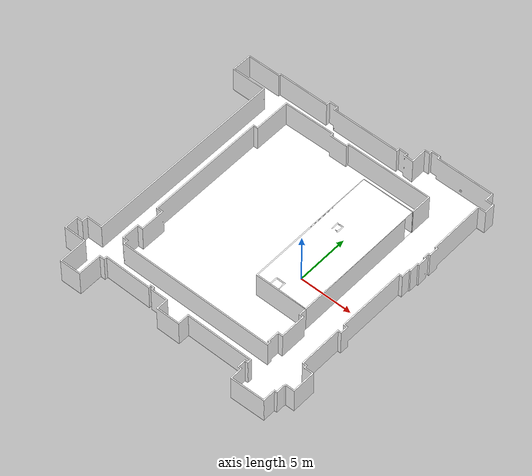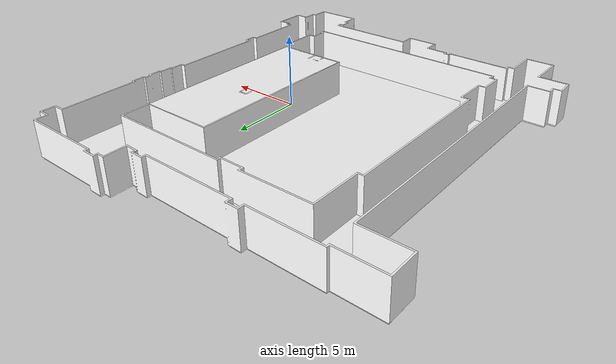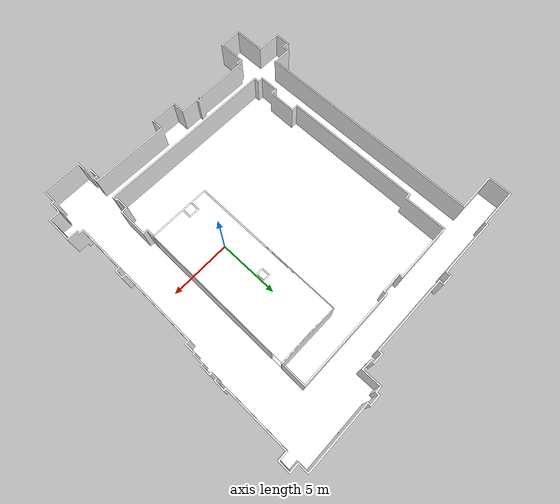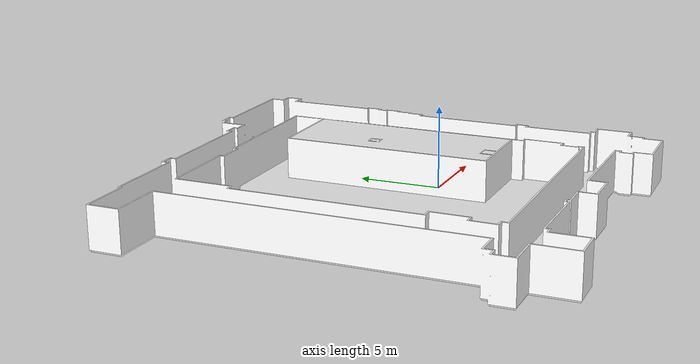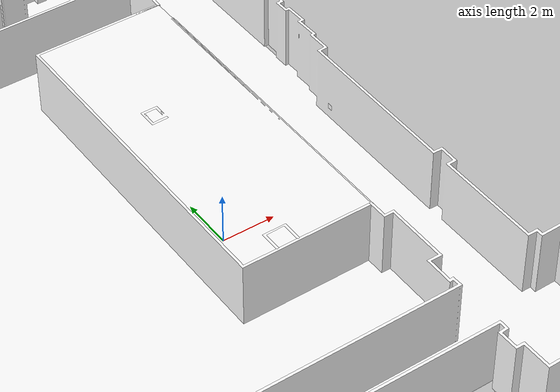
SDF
<sdf version="1.7">
 <world name="A2230">
  <physics type="ode">
   <max_step_size>0.003</max_step_size>
   <real_time_factor>1.0</real_time_factor>
   <real_time_update_rate>1000</real_time_update_rate>
   <gravity>0 0 -9.8</gravity>
  </physics>
  <plugin name="gz::sim::systems::Physics" filename="libgz-sim-physics-system.so"/>
  <plugin name="gz::sim::systems::UserCommands" filename="libgz-sim-user-commands-system.so"/>
  <plugin name="gz::sim::systems::SceneBroadcaster" filename="libgz-sim-scene-broadcaster-system.so"/>
  <plugin name="gz::sim::systems::Sensors" filename="libgz-sim-sensors-system.so">
   <render_engine>ogre2</render_engine>
  </plugin>
  <plugin name="gz::sim::systems::Imu" filename="libgz-sim-imu-system.so"/>
  <light type="directional" name="sun">
   <cast_shadows>false</cast_shadows>
   <pose>0 0 10 0 0 0</pose>
   <diffuse>1 1 1 1</diffuse>
   <specular>0.2 0.2 0.2 1</specular>
   <attenuation>
    <range>1000</range>
    <constant>0.09</constant>
    <linear>0.001</linear>
    <quadratic>0.001</quadratic>
   </attenuation>
   <direction>-0.5 0.1 -0.9</direction>
  </light>
  <include>
   <name>OpenRobotics/Table</name>
   <uri>model://Table</uri>
   <pose>2.896865789473704 3.516765096952918 0.0 0 0 1.5708</pose>
   <static>True</static>
  </include>
  <include>
   <name>OpenRobotics/Table_2</name>
   <uri>model://Table</uri>
   <pose>2.896865789473704 2.018953324099733 0.0 0 0 1.5708</pose>
   <static>True</static>
  </include>
  <include>
   <name>OpenRobotics/Table_3</name>
   <uri>model://Table</uri>
   <pose>2.90244182825487 0.52673531855957 0.0 0 0 1.5708</pose>
   <static>True</static>
  </include>
  <include>
   <name>OpenRobotics/Table_4</name>
   <uri>model://Table</uri>
   <pose>2.90244182825487 -1.044508448753476 0.0 0 0 1.5708</pose>
   <static>True</static>
  </include>
  <include>
   <name>OpenRobotics/Table_5</name>
   <uri>model://Table</uri>
   <pose>2.90244182825487 -2.562299168975084 0.0 0 0 1.5708</pose>
   <static>True</static>
  </include>
  <include>
   <name>OpenRobotics/Table_6</name>
   <uri>model://Table</uri>
   <pose>1.46702520775625 -2.919306371191148 0.0 0 0 3.1378</pose>
   <static>True</static>
  </include>
  <include>
   <name>OpenRobotics/Table_7</name>
   <uri>model://Table</uri>
   <pose>2.796865789473704 5.004576869806103 0.0 0 0 1.5708</pose>
   <static>True</static>
  </include>
  <include>
   <name>OpenRobotics/Table_8</name>
   <uri>model://Table</uri>
   <pose>2.796865789473704 6.45240623268699 0.0 0 0 1.5708</pose>
   <static>True</static>
  </include>
  <include>
   <name>A2230_map_layout</name>
   <uri>model://A2230_map_layout</uri>
   <pose>-25.5 18.5 0.0 0 0 0</pose>
  </include>
  <include>
   <name>Apriltag6</name>
   <uri>model://april_tags/Apriltag36_11_00006</uri>
   <pose>3.9 14.63 0.5 0.0 1.57 1.57</pose>
  </include>
  <include>
   <name>Apriltag0</name>
   <pose>0.11 3.78 0.5 0.0 1.57 1.57</pose>
   <uri>model://april_tags/Apriltag36_11_00000</uri>
  </include>
  <include>
   <name>Apriltag2</name>
   <pose>6.52 3.0 0.5 0.0 1.57 0.0</pose>
   <uri>model://april_tags/Apriltag36_11_00002</uri>
  </include>
 </world>
</sdf>

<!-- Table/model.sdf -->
<sdf version="1.5">
    <model name="Table">
        <static>true</static>
        <link name="link">
            <collision name="surface">
                <pose>0 0 1.0 0 0 0</pose>
                <geometry>
                    <box>
                        <size>1.5 0.8 0.03</size>
                    </box>
                </geometry>
                <surface>
                    <friction>
                        <ode>
                            <mu>0.6</mu>
                            <mu2>0.6</mu2>
                        </ode>
                    </friction>
                </surface>
            </collision>
            <visual name="visual1">
                <pose>0 0 1.0 0 0 0</pose>
                <geometry>
                    <box>
                        <size>1.5 0.8 0.03</size>
                    </box>
                </geometry>
                <material>
                    <diffuse>1.0 1.0 1.0</diffuse>
                    <script>
                        <uri>file://media/materials/scripts/gazebo.material</uri>
                        <name>Gazebo/Wood</name>
                    </script>
                    <!-- PBR for Ignition, material scripts for gazebo classic-->
                    <pbr>
                        <metal>
                            <albedo_map>https://fuel.gazebosim.org/1.0/openrobotics/models/table/4/files/Table_Diffuse.jpg</albedo_map>
                        </metal>
                    </pbr>
                </material>
            </visual>
            <collision name="front_left_leg">
                <pose>0.68 0.38 0.5 0 0 0</pose>
                <geometry>
                    <cylinder>
                        <radius>0.02</radius>
                        <length>1.0</length>
                    </cylinder>
                </geometry>
            </collision>
            <visual name="front_left_leg">
                <pose>0.68 0.38 0.5 0 0 0</pose>
                <geometry>
                    <cylinder>
                        <radius>0.02</radius>
                        <length>1.0</length>
                    </cylinder>
                </geometry>
                <material>
                    <diffuse>0.5 0.5 0.5</diffuse>
                    <script>
                        <uri>file://media/materials/scripts/gazebo.material</uri>
                        <name>Gazebo/Grey</name>
                    </script>
                </material>
            </visual>
            <collision name="front_right_leg">
                <pose>0.68 -0.38 0.5 0 0 0</pose>
                <geometry>
                    <cylinder>
                        <radius>0.02</radius>
                        <length>1.0</length>
                    </cylinder>
                </geometry>
            </collision>
            <visual name="front_right_leg">
                <pose>0.68 -0.38 0.5 0 0 0</pose>
                <geometry>
                    <cylinder>
                        <radius>0.02</radius>
                        <length>1.0</length>
                    </cylinder>
                </geometry>
                <material>
                    <diffuse>0.5 0.5 0.5</diffuse>
                    <script>
                        <uri>file://media/materials/scripts/gazebo.material</uri>
                        <name>Gazebo/Grey</name>
                    </script>
                </material>
            </visual>
            <collision name="back_right_leg">
                <pose>-0.68 -0.38 0.5 0 0 0</pose>
                <geometry>
                    <cylinder>
                        <radius>0.02</radius>
                        <length>1.0</length>
                    </cylinder>
                </geometry>
            </collision>
            <visual name="back_right_leg">
                <pose>-0.68 -0.38 0.5 0 0 0</pose>
                <geometry>
                    <cylinder>
                        <radius>0.02</radius>
                        <length>1.0</length>
                    </cylinder>
                </geometry>
                <material>
                    <diffuse>0.5 0.5 0.5</diffuse>
                    <script>
                        <uri>file://media/materials/scripts/gazebo.material</uri>
                        <name>Gazebo/Grey</name>
                    </script>
                </material>
            </visual>
            <collision name="back_left_leg">
                <pose>-0.68 0.38 0.5 0 0 0</pose>
                <geometry>
                    <cylinder>
                        <radius>0.02</radius>
                        <length>1.0</length>
                    </cylinder>
                </geometry>
            </collision>
            <visual name="back_left_leg">
                <pose>-0.68 0.38 0.5 0 0 0</pose>
                <geometry>
                    <cylinder>
                        <radius>0.02</radius>
                        <length>1.0</length>
                    </cylinder>
                </geometry>
                <material>
                    <diffuse>0.5 0.5 0.5</diffuse>
                    <script>
                        <uri>file://media/materials/scripts/gazebo.material</uri>
                        <name>Gazebo/Grey</name>
                    </script>
                </material>
            </visual>
        </link>
    </model>
</sdf>

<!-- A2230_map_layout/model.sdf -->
<sdf version="1.7">
  <model name="A2230_map_layout">
    <static>true</static>
    <link name="floor_1">
      <visual name="visual">
        <geometry>
          <mesh>
            <uri>model://A2230_map_layout/meshes/floor_1.obj</uri>
          </mesh>
        </geometry>
        <material>
          <diffuse>1.0 1.0 1.0</diffuse>
          <specular>0.1 0.1 0.1</specular>
          <pbr>
            <metal>
              <metalness>0.0</metalness>
              <albedo_map>model://A2230_map_layout/meshes/gray_flooring.png</albedo_map>
            </metal>
          </pbr>
          <script>
            <uri>model://A2230_map_layout/meshes/</uri>
            <name>floor_1_Diffuse</name>
          </script>
        </material>
      </visual>
      <collision name="collision">
        <geometry>
          <mesh>
            <uri>model://A2230_map_layout/meshes/floor_1.obj</uri>
          </mesh>
        </geometry>
        <surface>
          <contact>
            <collide_bitmask>0x01</collide_bitmask>
          </contact>
        </surface>
      </collision>
    </link>
    <link name="ceiling_1">
      <visual name="visual">
        <geometry>
          <mesh>
            <uri>model://A2230_map_layout/meshes/ceiling_1.obj</uri>
          </mesh>
        </geometry>
        <material>
          <diffuse>1.0 1.0 1.0</diffuse>
          <specular>0.1 0.1 0.1</specular>
          <pbr>
            <metal>
              <metalness>0.0</metalness>
              <albedo_map>model://A2230_map_layout/meshes/gray_flooring.png</albedo_map>
            </metal>
          </pbr>
          <script>
            <uri>model://A2230_map_layout/meshes/</uri>
            <name>ceiling_1_Diffuse</name>
          </script>
        </material>
      </visual>
      <collision name="collision">
        <geometry>
          <mesh>
            <uri>model://A2230_map_layout/meshes/ceiling_1.obj</uri>
          </mesh>
        </geometry>
        <surface>
          <contact>
            <collide_bitmask>0x01</collide_bitmask>
          </contact>
        </surface>
      </collision>
    </link>
    <link name="floor_2">
      <visual name="visual">
        <geometry>
          <mesh>
            <uri>model://A2230_map_layout/meshes/floor_2.obj</uri>
          </mesh>
        </geometry>
        <material>
          <diffuse>1.0 1.0 1.0</diffuse>
          <specular>0.1 0.1 0.1</specular>
          <pbr>
            <metal>
              <metalness>0.0</metalness>
              <albedo_map>model://A2230_map_layout/meshes/concrete3.png</albedo_map>
            </metal>
          </pbr>
          <script>
            <uri>model://A2230_map_layout/meshes/</uri>
            <name>floor_2_Diffuse</name>
          </script>
        </material>
      </visual>
      <collision name="collision">
        <geometry>
          <mesh>
            <uri>model://A2230_map_layout/meshes/floor_2.obj</uri>
          </mesh>
        </geometry>
        <surface>
          <contact>
            <collide_bitmask>0x01</collide_bitmask>
          </contact>
        </surface>
      </collision>
    </link>
    <link name="wall_1">
      <visual name="wall_1">
        <geometry>
          <mesh>
            <uri>model://A2230_map_layout/meshes/wall_1.obj</uri>
          </mesh>
        </geometry>
        <transparency>0.0</transparency>
        <material>
          <diffuse>1.0 1.0 1.0</diffuse>
          <specular>0.1 0.1 0.1</specular>
          <pbr>
            <metal>
              <metalness>0.0</metalness>
              <albedo_map>model://A2230_map_layout/meshes/white_brick.png</albedo_map>
            </metal>
          </pbr>
          <script>
            <uri>model://A2230_map_layout/meshes/</uri>
            <name>wall_1_Diffuse</name>
          </script>
        </material>
      </visual>
      <collision name="collision">
        <geometry>
          <mesh>
            <uri>model://A2230_map_layout/meshes/wall_1.obj</uri>
          </mesh>
        </geometry>
        <surface>
          <contact>
            <collide_bitmask>0x01</collide_bitmask>
          </contact>
        </surface>
      </collision>
      <pose>23.92924920426243 -21.97584710088617 0 0 0 0</pose>
    </link>
    <link name="wall_2">
      <visual name="wall_2">
        <geometry>
          <mesh>
            <uri>model://A2230_map_layout/meshes/wall_2.obj</uri>
          </mesh>
        </geometry>
        <transparency>0.0</transparency>
        <material>
          <diffuse>1.0 1.0 1.0</diffuse>
          <specular>0.1 0.1 0.1</specular>
          <pbr>
            <metal>
              <metalness>0.0</metalness>
              <albedo_map>model://A2230_map_layout/meshes/default.png</albedo_map>
            </metal>
          </pbr>
          <script>
            <uri>model://A2230_map_layout/meshes/</uri>
            <name>wall_2_Diffuse</name>
          </script>
        </material>
      </visual>
      <collision name="collision">
        <geometry>
          <mesh>
            <uri>model://A2230_map_layout/meshes/wall_2.obj</uri>
          </mesh>
        </geometry>
        <surface>
          <contact>
            <collide_bitmask>0x01</collide_bitmask>
          </contact>
        </surface>
      </collision>
      <pose>8.58452619861297 -30.84328475728172 0 0 0 0</pose>
    </link>
  </model>
</sdf>

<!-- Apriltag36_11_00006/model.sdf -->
<sdf version="1.9">
  <model name="tag36_11_00006">
    <static>true</static>
    <link name="link">
      <visual name="visual">
        <geometry>
          <box>
            <size>0.21 0.21 0.001</size>
          </box>
        </geometry>
        <material>
          <ambient>1 1 1 1</ambient>
          <diffuse>1 1 1 1</diffuse>
          <specular>0.5 0.5 0.5 1</specular>
          <pbr>
            <metal>
              <albedo_map>materials/textures/tag36_11_00006.png</albedo_map>
              <roughness>0.5</roughness>
              <metalness>0.0</metalness>
            </metal>
          </pbr>
        </material>
      </visual>
      <collision name="collision">
        <geometry>
          <box>
            <size>0.21 0.21 0.001</size>
          </box>
        </geometry>
      </collision>
    </link>
  </model>
</sdf>

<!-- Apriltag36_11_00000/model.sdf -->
<sdf version="1.9">
  <model name="tag36_11_00000">
    <static>true</static>
    <link name="link">
      <visual name="visual">
        <geometry>
          <box>
            <size>0.21 0.21 0.001</size>
          </box>
        </geometry>
        <material>
          <ambient>1 1 1 1</ambient>
          <diffuse>1 1 1 1</diffuse>
          <specular>0.5 0.5 0.5 1</specular>
          <pbr>
            <metal>
              <albedo_map>materials/textures/tag36_11_00000.png</albedo_map>
              <roughness>0.5</roughness>
              <metalness>0.0</metalness>
            </metal>
          </pbr>
        </material>
      </visual>
      <collision name="collision">
        <geometry>
          <box>
            <size>0.21 0.21 0.001</size>
          </box>
        </geometry>
      </collision>
    </link>
  </model>
</sdf>

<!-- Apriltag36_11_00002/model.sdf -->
<sdf version="1.9">
  <model name="tag36_11_00002">
    <static>true</static>
    <link name="link">
      <visual name="visual">
        <geometry>
          <box>
            <size>0.21 0.21 0.001</size>
          </box>
        </geometry>
        <material>
          <ambient>1 1 1 1</ambient>
          <diffuse>1 1 1 1</diffuse>
          <specular>0.5 0.5 0.5 1</specular>
          <pbr>
            <metal>
              <albedo_map>materials/textures/tag36_11_00002.png</albedo_map>
              <roughness>0.5</roughness>
              <metalness>0.0</metalness>
            </metal>
          </pbr>
        </material>
      </visual>
      <collision name="collision">
        <geometry>
          <box>
            <size>0.21 0.21 0.001</size>
          </box>
        </geometry>
      </collision>
    </link>
  </model>
</sdf>
